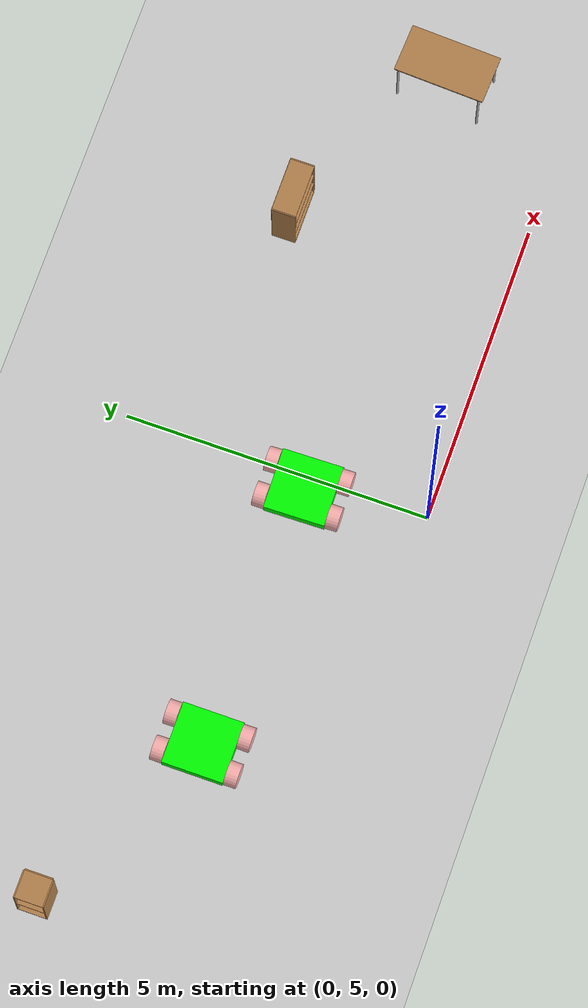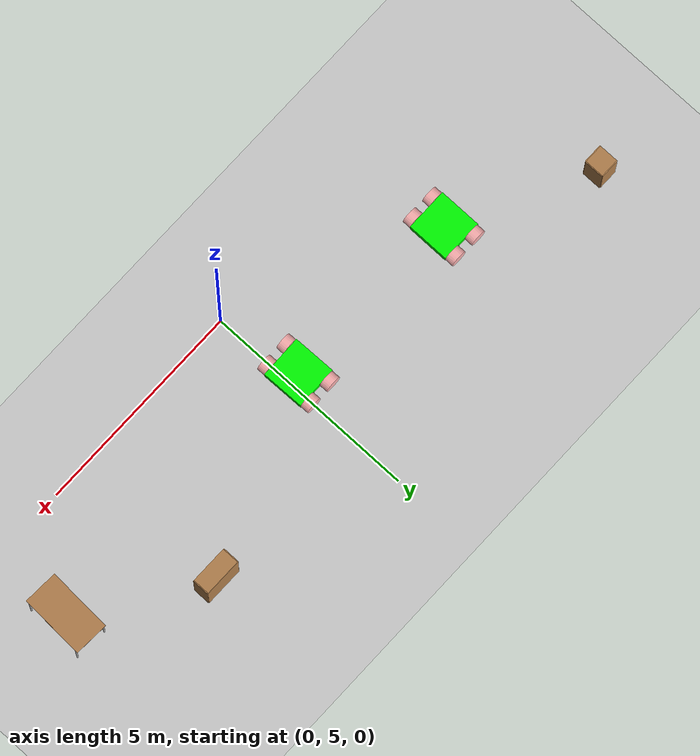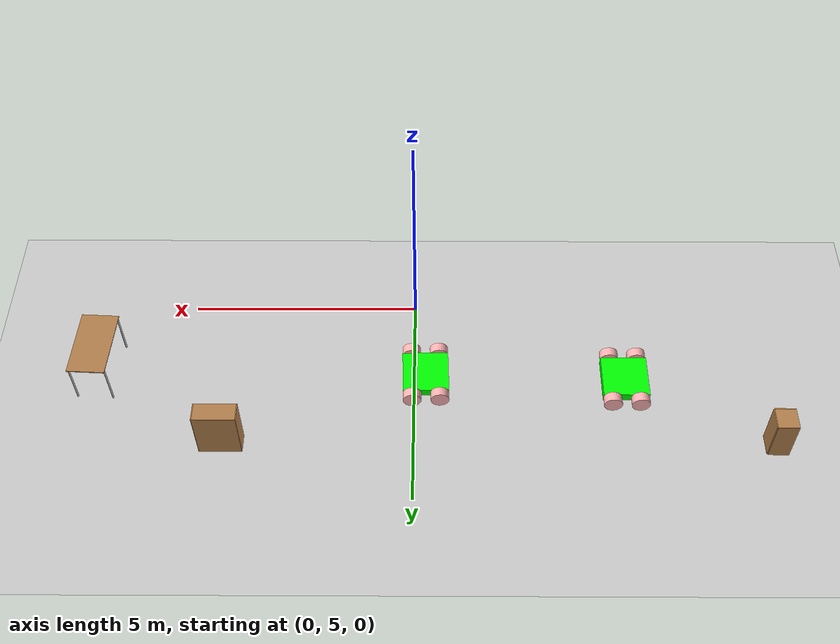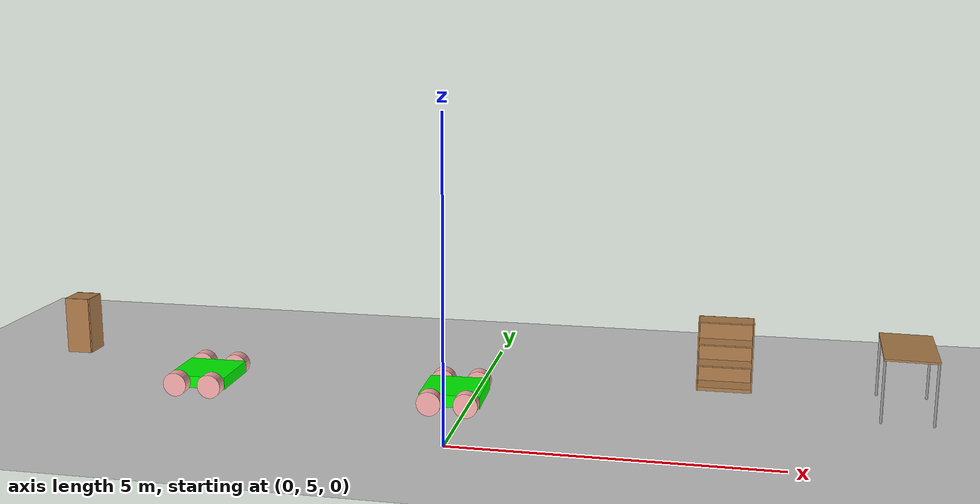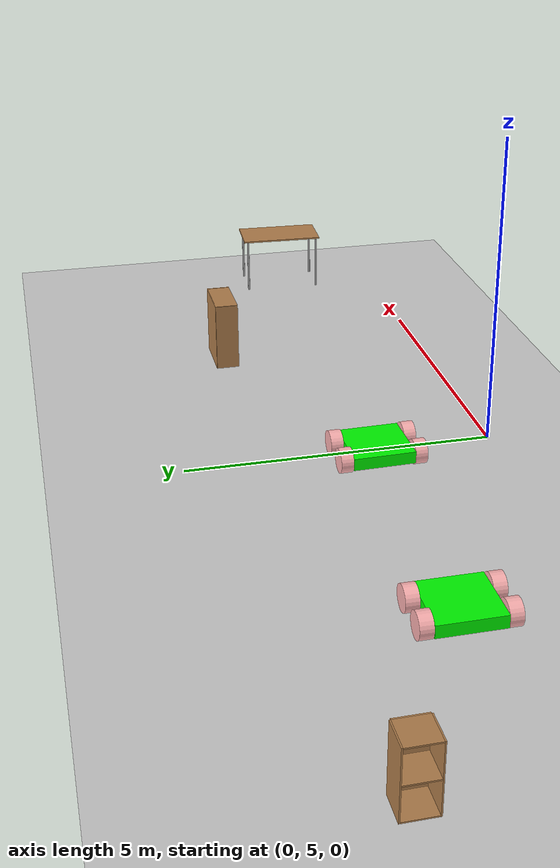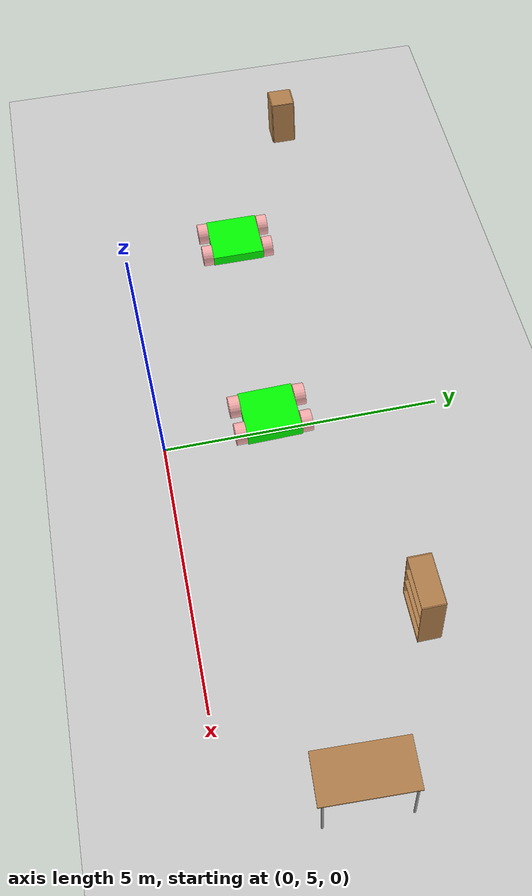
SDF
<sdf version="1.7">
 <world name="default">
  <model name="ground_plane">
   <static>1</static>
   <link name="link">
    <collision name="collision">
     <geometry><plane><normal>0 0 1</normal><size>100 100</size></plane></geometry>
     <surface><friction><ode><mu>100</mu><mu2>50</mu2></ode></friction></surface>
    </collision>
    <visual name="visual">
     <cast_shadows>0</cast_shadows>
     <geometry><plane><normal>0 0 1</normal><size>100 100</size></plane></geometry>
     <material>
      <script><uri>file://media/materials/scripts/gazebo.material</uri><name>Gazebo/Grey</name></script>
     </material>
    </visual>
   </link>
  </model>
  <model name="table_0_clone_0">
   <static>1</static>
   <link name="link">
    <collision name="surface">
     <pose>0 0 1 0 -0 0</pose>
     <geometry><box><size>1.5 0.8 0.03</size></box></geometry>
     <surface><friction><ode><mu>0.6</mu><mu2>0.6</mu2></ode></friction></surface>
    </collision>
    <visual name="visual1">
     <pose>0 0 1 0 -0 0</pose>
     <geometry><box><size>1.5 0.8 0.03</size></box></geometry>
     <material>
      <script><uri>file://media/materials/scripts/gazebo.material</uri><name>Gazebo/Wood</name></script>
     </material>
    </visual>
    <collision name="front_left_leg">
     <pose>0.68 0.38 0.5 0 -0 0</pose>
     <geometry><cylinder><radius>0.02</radius><length>1</length></cylinder></geometry>
    </collision>
    <visual name="front_left_leg">
     <pose>0.68 0.38 0.5 0 -0 0</pose>
     <geometry><cylinder><radius>0.02</radius><length>1</length></cylinder></geometry>
     <material>
      <script><uri>file://media/materials/scripts/gazebo.material</uri><name>Gazebo/Grey</name></script>
     </material>
    </visual>
    <collision name="front_right_leg">
     <pose>0.68 -0.38 0.5 0 -0 0</pose>
     <geometry><cylinder><radius>0.02</radius><length>1</length></cylinder></geometry>
    </collision>
    <visual name="front_right_leg">
     <pose>0.68 -0.38 0.5 0 -0 0</pose>
     <geometry><cylinder><radius>0.02</radius><length>1</length></cylinder></geometry>
     <material>
      <script><uri>file://media/materials/scripts/gazebo.material</uri><name>Gazebo/Grey</name></script>
     </material>
    </visual>
    <collision name="back_right_leg">
     <pose>-0.68 -0.38 0.5 0 -0 0</pose>
     <geometry><cylinder><radius>0.02</radius><length>1</length></cylinder></geometry>
    </collision>
    <visual name="back_right_leg">
     <pose>-0.68 -0.38 0.5 0 -0 0</pose>
     <geometry><cylinder><radius>0.02</radius><length>1</length></cylinder></geometry>
     <material>
      <script><uri>file://media/materials/scripts/gazebo.material</uri><name>Gazebo/Grey</name></script>
     </material>
    </visual>
    <collision name="back_left_leg">
     <pose>-0.68 0.38 0.5 0 -0 0</pose>
     <geometry><cylinder><radius>0.02</radius><length>1</length></cylinder></geometry>
    </collision>
    <visual name="back_left_leg">
     <pose>-0.68 0.38 0.5 0 -0 0</pose>
     <geometry><cylinder><radius>0.02</radius><length>1</length></cylinder></geometry>
     <material>
      <script><uri>file://media/materials/scripts/gazebo.material</uri><name>Gazebo/Grey</name></script>
     </material>
    </visual>
   </link>
   <pose>6.78526 7.02709 0.346112 0.000206 -0.004127 -1.62077</pose>
  </model>
  <model name="cabinet">
   <static>1</static>
   <link name="cabinet_bottom_plate">
    <inertial>
     <pose>0 0 -1 0 -0 0</pose>
     <inertia><ixx>2.05</ixx><ixy>0</ixy><ixz>0</ixz><iyy>2.05</iyy><iyz>0</iyz><izz>2.05</izz></inertia>
     <mass>25</mass>
    </inertial>
    <collision name="cabinet_bottom_plate_geom">
     <pose>0 0 0.01 0 -0 0</pose>
     <geometry><box><size>0.45 0.45 0.02</size></box></geometry>
    </collision>
    <visual name="cabinet_bottom_plate_geom_visual">
     <pose>0 0 0.01 0 -0 0</pose>
     <geometry><box><size>0.45 0.45 0.02</size></box></geometry>
     <material>
      <script><uri>file://media/materials/scripts/gazebo.material</uri><name>Gazebo/Wood</name></script>
     </material>
    </visual>
    <collision name="cabinet_bottom_plate_geom_cabinet_back_plate">
     <pose>0.235 0 0.51 0 -0 0</pose>
     <geometry><box><size>0.02 0.45 1.02</size></box></geometry>
    </collision>
    <visual name="cabinet_bottom_plate_geom_cabinet_back_plate_visual">
     <pose>0.235 0 0.51 0 -0 0</pose>
     <geometry><box><size>0.02 0.45 1.02</size></box></geometry>
     <material>
      <script><uri>file://media/materials/scripts/gazebo.material</uri><name>Gazebo/Wood</name></script>
     </material>
    </visual>
    <collision name="cabinet_bottom_plate_geom_cabinet_left_plate">
     <pose>0 0.235 0.51 0 -0 0</pose>
     <geometry><box><size>0.45 0.02 1.02</size></box></geometry>
    </collision>
    <visual name="cabinet_bottom_plate_geom_cabinet_left_plate_visual">
     <pose>0 0.235 0.51 0 -0 0</pose>
     <geometry><box><size>0.45 0.02 1.02</size></box></geometry>
     <material>
      <script><uri>file://media/materials/scripts/gazebo.material</uri><name>Gazebo/Wood</name></script>
     </material>
    </visual>
    <collision name="cabinet_bottom_plate_geom_cabinet_middle_plate">
     <pose>0 0 0.51 0 -0 0</pose>
     <geometry><box><size>0.45 0.45 0.02</size></box></geometry>
    </collision>
    <visual name="cabinet_bottom_plate_geom_cabinet_middle_plate_visual">
     <pose>0 0 0.51 0 -0 0</pose>
     <geometry><box><size>0.45 0.45 0.02</size></box></geometry>
     <material>
      <script><uri>file://media/materials/scripts/gazebo.material</uri><name>Gazebo/Wood</name></script>
     </material>
    </visual>
    <collision name="cabinet_bottom_plate_geom_cabinet_right_plate">
     <pose>0 -0.235 0.51 0 -0 0</pose>
     <geometry><box><size>0.45 0.02 1.02</size></box></geometry>
    </collision>
    <visual name="cabinet_bottom_plate_geom_cabinet_right_plate_visual">
     <pose>0 -0.235 0.51 0 -0 0</pose>
     <geometry><box><size>0.45 0.02 1.02</size></box></geometry>
     <material>
      <script><uri>file://media/materials/scripts/gazebo.material</uri><name>Gazebo/Wood</name></script>
     </material>
    </visual>
    <collision name="cabinet_bottom_plate_geom_cabinet_top_plate">
     <pose>0 0 1.01 0 -0 0</pose>
     <geometry><box><size>0.45 0.45 0.02</size></box></geometry>
    </collision>
    <visual name="cabinet_bottom_plate_geom_cabinet_top_plate_visual">
     <pose>0 0 1.01 0 -0 0</pose>
     <geometry><box><size>0.45 0.45 0.02</size></box></geometry>
     <material>
      <script><uri>file://media/materials/scripts/gazebo.material</uri><name>Gazebo/Wood</name></script>
     </material>
    </visual>
   </link>
   <pose>-7.68746 8.65206 0 0 -0 0</pose>
  </model>
  <model name="bookshelf">
   <static>1</static>
   <link name="link">
    <inertial><mass>1</mass></inertial>
    <collision name="back">
     <pose>0 0.005 0.6 0 -0 0</pose>
     <geometry><box><size>0.9 0.01 1.2</size></box></geometry>
    </collision>
    <visual name="visual1">
     <pose>0 0.005 0.6 0 -0 0</pose>
     <geometry><box><size>0.9 0.01 1.2</size></box></geometry>
     <material>
      <script><uri>file://media/materials/scripts/gazebo.material</uri><name>Gazebo/Wood</name></script>
     </material>
    </visual>
    <collision name="left_side">
     <pose>0.45 -0.195 0.6 0 -0 0</pose>
     <geometry><box><size>0.02 0.4 1.2</size></box></geometry>
    </collision>
    <visual name="visual2">
     <pose>0.45 -0.195 0.6 0 -0 0</pose>
     <geometry><box><size>0.02 0.4 1.2</size></box></geometry>
     <material>
      <script><uri>file://media/materials/scripts/gazebo.material</uri><name>Gazebo/Wood</name></script>
     </material>
    </visual>
    <collision name="right_side">
     <pose>-0.45 -0.195 0.6 0 -0 0</pose>
     <geometry><box><size>0.02 0.4 1.2</size></box></geometry>
    </collision>
    <visual name="visual3">
     <pose>-0.45 -0.195 0.6 0 -0 0</pose>
     <geometry><box><size>0.02 0.4 1.2</size></box></geometry>
     <material>
      <script><uri>file://media/materials/scripts/gazebo.material</uri><name>Gazebo/Wood</name></script>
     </material>
    </visual>
    <collision name="bottom">
     <pose>0 -0.195 0.03 0 -0 0</pose>
     <geometry><box><size>0.88 0.4 0.06</size></box></geometry>
    </collision>
    <visual name="visual4">
     <pose>0 -0.195 0.03 0 -0 0</pose>
     <geometry><box><size>0.88 0.4 0.06</size></box></geometry>
     <material>
      <script><uri>file://media/materials/scripts/gazebo.material</uri><name>Gazebo/Wood</name></script>
     </material>
    </visual>
    <collision name="top">
     <pose>0 -0.195 1.19 0 -0 0</pose>
     <geometry><box><size>0.88 0.4 0.02</size></box></geometry>
    </collision>
    <visual name="visual5">
     <pose>0 -0.195 1.19 0 -0 0</pose>
     <geometry><box><size>0.88 0.4 0.02</size></box></geometry>
     <material>
      <script><uri>file://media/materials/scripts/gazebo.material</uri><name>Gazebo/Wood</name></script>
     </material>
    </visual>
    <collision name="low_shelf">
     <pose>0 -0.195 0.43 0 -0 0</pose>
     <geometry><box><size>0.88 0.4 0.02</size></box></geometry>
    </collision>
    <visual name="visual6">
     <pose>0 -0.195 0.43 0 -0 0</pose>
     <geometry><box><size>0.88 0.4 0.02</size></box></geometry>
     <material>
      <script><uri>file://media/materials/scripts/gazebo.material</uri><name>Gazebo/Wood</name></script>
     </material>
    </visual>
    <collision name="high_shelf">
     <pose>0 -0.195 0.8 0 -0 0</pose>
     <geometry><box><size>0.88 0.4 0.02</size></box></geometry>
    </collision>
    <visual name="visual7">
     <pose>0 -0.195 0.8 0 -0 0</pose>
     <geometry><box><size>0.88 0.4 0.02</size></box></geometry>
     <material>
      <script><uri>file://media/materials/scripts/gazebo.material</uri><name>Gazebo/Wood</name></script>
     </material>
    </visual>
   </link>
   <pose>4.06665 8.8562 0 0 -0 0</pose>
  </model>
  <model name="AWDRobot">
   <link name="link_0">
    <inertial>
     <mass>1</mass>
     <inertia>
      <ixx>0.166667</ixx>
      <ixy>0</ixy>
      <ixz>0</ixz>
      <iyy>0.166667</iyy>
      <iyz>0</iyz>
      <izz>0.166667</izz>
     </inertia>
    </inertial>
    <visual name="visual">
     <geometry><box><size>1 1 0.2</size></box></geometry>
     <material>
      <lighting>1</lighting>
      <script><uri>file://media/materials/scripts/gazebo.material</uri><name>Gazebo/Grey</name></script>
      <shader type="pixel"><normal_map>__default__</normal_map></shader>
      <ambient>0 1 0 1</ambient>
      <diffuse>0 1 0 1</diffuse>
      <specular>0.01 0.01 0.01 1</specular>
      <emissive>0 0 0 1</emissive>
     </material>
    </visual>
    <collision name="collision">
     <geometry><box><size>1 1 0.2</size></box></geometry>
     <surface>
      <friction>
       <ode><mu>1</mu><mu2>1</mu2><fdir1>0 0 0</fdir1><slip1>0</slip1><slip2>0</slip2></ode>
       <torsional>
        <coefficient>1</coefficient>
        <patch_radius>0</patch_radius>
        <surface_radius>0</surface_radius>
        <use_patch_radius>1</use_patch_radius>
        <ode><slip>0</slip></ode>
       </torsional>
      </friction>
      <bounce><restitution_coefficient>0</restitution_coefficient><threshold>1e+06</threshold></bounce>
      <contact>
       <collide_without_contact>0</collide_without_contact>
       <collide_without_contact_bitmask>1</collide_without_contact_bitmask>
       <collide_bitmask>1</collide_bitmask>
       <ode>
        <soft_cfm>0</soft_cfm>
        <soft_erp>0.2</soft_erp>
        <kp>1e+13</kp>
        <kd>1</kd>
        <max_vel>0.01</max_vel>
        <min_depth>0</min_depth>
       </ode>
       <bullet>
        <split_impulse>1</split_impulse>
        <split_impulse_penetration_threshold>-0.01</split_impulse_penetration_threshold>
        <soft_cfm>0</soft_cfm>
        <soft_erp>0.2</soft_erp>
        <kp>1e+13</kp>
        <kd>1</kd>
       </bullet>
      </contact>
     </surface>
    </collision>
   </link>
   <link name="link_1">
    <pose>0.3 -0.600019 0 1.5707 -0 0</pose>
    <inertial>
     <mass>1</mass>
     <inertia><ixx>0.145833</ixx><ixy>0</ixy><ixz>0</ixz><iyy>0.145833</iyy><iyz>0</iyz><izz>0.125</izz></inertia>
    </inertial>
    <visual name="visual">
     <geometry><cylinder><radius>0.2</radius><length>0.2</length></cylinder></geometry>
     <material>
      <lighting>1</lighting>
      <script><uri>file://media/materials/scripts/gazebo.material</uri><name>Gazebo/Grey</name></script>
      <shader type="pixel"><normal_map>__default__</normal_map></shader>
      <ambient>1 0.3 0.3 1</ambient>
      <diffuse>1 0.7 0.7 1</diffuse>
      <specular>0.01 0.01 0.01 1</specular>
      <emissive>0 0 0 1</emissive>
     </material>
    </visual>
    <collision name="collision">
     <geometry><cylinder><radius>0.2</radius><length>0.2</length></cylinder></geometry>
     <surface>
      <friction>
       <ode><mu>1</mu><mu2>1</mu2><fdir1>0 0 0</fdir1><slip1>0</slip1><slip2>0</slip2></ode>
       <torsional>
        <coefficient>1</coefficient>
        <patch_radius>0</patch_radius>
        <surface_radius>0</surface_radius>
        <use_patch_radius>1</use_patch_radius>
        <ode><slip>0</slip></ode>
       </torsional>
      </friction>
      <bounce><restitution_coefficient>0</restitution_coefficient><threshold>1e+06</threshold></bounce>
      <contact>
       <collide_without_contact>0</collide_without_contact>
       <collide_without_contact_bitmask>1</collide_without_contact_bitmask>
       <collide_bitmask>1</collide_bitmask>
       <ode>
        <soft_cfm>0</soft_cfm>
        <soft_erp>0.2</soft_erp>
        <kp>1e+13</kp>
        <kd>1</kd>
        <max_vel>0.01</max_vel>
        <min_depth>0</min_depth>
       </ode>
       <bullet>
        <split_impulse>1</split_impulse>
        <split_impulse_penetration_threshold>-0.01</split_impulse_penetration_threshold>
        <soft_cfm>0</soft_cfm>
        <soft_erp>0.2</soft_erp>
        <kp>1e+13</kp>
        <kd>1</kd>
       </bullet>
      </contact>
     </surface>
    </collision>
   </link>
   <link name="link_1_clone">
    <pose>-0.3 -0.600019 0 1.5707 -0 0</pose>
    <inertial>
     <mass>1</mass>
     <inertia><ixx>0.145833</ixx><ixy>0</ixy><ixz>0</ixz><iyy>0.145833</iyy><iyz>0</iyz><izz>0.125</izz></inertia>
    </inertial>
    <visual name="visual">
     <geometry><cylinder><radius>0.2</radius><length>0.2</length></cylinder></geometry>
     <material>
      <lighting>1</lighting>
      <script><uri>file://media/materials/scripts/gazebo.material</uri><name>Gazebo/Grey</name></script>
      <shader type="pixel"><normal_map>__default__</normal_map></shader>
      <ambient>1 0.3 0.3 1</ambient>
      <diffuse>1 0.7 0.7 1</diffuse>
      <specular>0.01 0.01 0.01 1</specular>
      <emissive>0 0 0 1</emissive>
     </material>
    </visual>
    <collision name="collision">
     <geometry><cylinder><radius>0.2</radius><length>0.2</length></cylinder></geometry>
     <surface>
      <friction>
       <ode><mu>1</mu><mu2>1</mu2><fdir1>0 0 0</fdir1><slip1>0</slip1><slip2>0</slip2></ode>
       <torsional>
        <coefficient>1</coefficient>
        <patch_radius>0</patch_radius>
        <surface_radius>0</surface_radius>
        <use_patch_radius>1</use_patch_radius>
        <ode><slip>0</slip></ode>
       </torsional>
      </friction>
      <bounce><restitution_coefficient>0</restitution_coefficient><threshold>1e+06</threshold></bounce>
      <contact>
       <collide_without_contact>0</collide_without_contact>
       <collide_without_contact_bitmask>1</collide_without_contact_bitmask>
       <collide_bitmask>1</collide_bitmask>
       <ode>
        <soft_cfm>0</soft_cfm>
        <soft_erp>0.2</soft_erp>
        <kp>1e+13</kp>
        <kd>1</kd>
        <max_vel>0.01</max_vel>
        <min_depth>0</min_depth>
       </ode>
       <bullet>
        <split_impulse>1</split_impulse>
        <split_impulse_penetration_threshold>-0.01</split_impulse_penetration_threshold>
        <soft_cfm>0</soft_cfm>
        <soft_erp>0.2</soft_erp>
        <kp>1e+13</kp>
        <kd>1</kd>
       </bullet>
      </contact>
     </surface>
    </collision>
   </link>
   <link name="link_1_clone_0">
    <pose>-0.3 0.600019 0 1.5707 -0 0</pose>
    <inertial>
     <mass>1</mass>
     <inertia><ixx>0.145833</ixx><ixy>0</ixy><ixz>0</ixz><iyy>0.145833</iyy><iyz>0</iyz><izz>0.125</izz></inertia>
    </inertial>
    <visual name="visual">
     <geometry><cylinder><radius>0.2</radius><length>0.2</length></cylinder></geometry>
     <material>
      <lighting>1</lighting>
      <script><uri>file://media/materials/scripts/gazebo.material</uri><name>Gazebo/Grey</name></script>
      <shader type="pixel"><normal_map>__default__</normal_map></shader>
      <ambient>1 0.3 0.3 1</ambient>
      <diffuse>1 0.7 0.7 1</diffuse>
      <specular>0.01 0.01 0.01 1</specular>
      <emissive>0 0 0 1</emissive>
     </material>
    </visual>
    <collision name="collision">
     <geometry><cylinder><radius>0.2</radius><length>0.2</length></cylinder></geometry>
     <surface>
      <friction>
       <ode><mu>1</mu><mu2>1</mu2><fdir1>0 0 0</fdir1><slip1>0</slip1><slip2>0</slip2></ode>
       <torsional>
        <coefficient>1</coefficient>
        <patch_radius>0</patch_radius>
        <surface_radius>0</surface_radius>
        <use_patch_radius>1</use_patch_radius>
        <ode><slip>0</slip></ode>
       </torsional>
      </friction>
      <bounce><restitution_coefficient>0</restitution_coefficient><threshold>1e+06</threshold></bounce>
      <contact>
       <collide_without_contact>0</collide_without_contact>
       <collide_without_contact_bitmask>1</collide_without_contact_bitmask>
       <collide_bitmask>1</collide_bitmask>
       <ode>
        <soft_cfm>0</soft_cfm>
        <soft_erp>0.2</soft_erp>
        <kp>1e+13</kp>
        <kd>1</kd>
        <max_vel>0.01</max_vel>
        <min_depth>0</min_depth>
       </ode>
       <bullet>
        <split_impulse>1</split_impulse>
        <split_impulse_penetration_threshold>-0.01</split_impulse_penetration_threshold>
        <soft_cfm>0</soft_cfm>
        <soft_erp>0.2</soft_erp>
        <kp>1e+13</kp>
        <kd>1</kd>
       </bullet>
      </contact>
     </surface>
    </collision>
   </link>
   <link name="link_1_clone_1">
    <pose>0.3 0.600019 0 1.5707 -0 0</pose>
    <inertial>
     <mass>1</mass>
     <inertia><ixx>0.145833</ixx><ixy>0</ixy><ixz>0</ixz><iyy>0.145833</iyy><iyz>0</iyz><izz>0.125</izz></inertia>
    </inertial>
    <visual name="visual">
     <geometry><cylinder><radius>0.2</radius><length>0.2</length></cylinder></geometry>
     <material>
      <lighting>1</lighting>
      <script><uri>file://media/materials/scripts/gazebo.material</uri><name>Gazebo/Grey</name></script>
      <shader type="pixel"><normal_map>__default__</normal_map></shader>
      <ambient>1 0.3 0.3 1</ambient>
      <diffuse>1 0.7 0.7 1</diffuse>
      <specular>0.01 0.01 0.01 1</specular>
      <emissive>0 0 0 1</emissive>
     </material>
    </visual>
    <collision name="collision">
     <geometry><cylinder><radius>0.2</radius><length>0.2</length></cylinder></geometry>
     <surface>
      <friction>
       <ode><mu>1</mu><mu2>1</mu2><fdir1>0 0 0</fdir1><slip1>0</slip1><slip2>0</slip2></ode>
       <torsional>
        <coefficient>1</coefficient>
        <patch_radius>0</patch_radius>
        <surface_radius>0</surface_radius>
        <use_patch_radius>1</use_patch_radius>
        <ode><slip>0</slip></ode>
       </torsional>
      </friction>
      <bounce><restitution_coefficient>0</restitution_coefficient><threshold>1e+06</threshold></bounce>
      <contact>
       <collide_without_contact>0</collide_without_contact>
       <collide_without_contact_bitmask>1</collide_without_contact_bitmask>
       <collide_bitmask>1</collide_bitmask>
       <ode>
        <soft_cfm>0</soft_cfm>
        <soft_erp>0.2</soft_erp>
        <kp>1e+13</kp>
        <kd>1</kd>
        <max_vel>0.01</max_vel>
        <min_depth>0</min_depth>
       </ode>
       <bullet>
        <split_impulse>1</split_impulse>
        <split_impulse_penetration_threshold>-0.01</split_impulse_penetration_threshold>
        <soft_cfm>0</soft_cfm>
        <soft_erp>0.2</soft_erp>
        <kp>1e+13</kp>
        <kd>1</kd>
       </bullet>
      </contact>
     </surface>
    </collision>
   </link>
   <joint name="link_0_JOINT_1" type="revolute">
    <parent>link_0</parent>
    <child>link_1_clone</child>
    <axis>
     <xyz>0 0 1</xyz>
     <limit>
      <lower>-1.79769e+308</lower>
      <upper>1.79769e+308</upper>
      <effort>-1</effort>
      <velocity>-1</velocity>
     </limit>
     <dynamics>
      <spring_reference>0</spring_reference>
      <spring_stiffness>0</spring_stiffness>
      <damping>0</damping>
     </dynamics>
    </axis>
    <physics>
     <ode><limit><cfm>0</cfm><erp>0.2</erp></limit><suspension><cfm>0</cfm><erp>0.2</erp></suspension></ode>
    </physics>
   </joint>
   <joint name="link_0_JOINT_2" type="revolute">
    <parent>link_0</parent>
    <child>link_1</child>
    <axis>
     <xyz>0 0 1</xyz>
     <limit>
      <lower>-1.79769e+308</lower>
      <upper>1.79769e+308</upper>
      <effort>-1</effort>
      <velocity>-1</velocity>
     </limit>
     <dynamics>
      <spring_reference>0</spring_reference>
      <spring_stiffness>0</spring_stiffness>
      <damping>0</damping>
     </dynamics>
    </axis>
    <physics>
     <ode><limit><cfm>0</cfm><erp>0.2</erp></limit><suspension><cfm>0</cfm><erp>0.2</erp></suspension></ode>
    </physics>
   </joint>
   <joint name="link_0_JOINT_3" type="revolute">
    <parent>link_0</parent>
    <child>link_1_clone_0</child>
    <axis>
     <xyz>0 0 1</xyz>
     <limit>
      <lower>-1.79769e+308</lower>
      <upper>1.79769e+308</upper>
      <effort>-1</effort>
      <velocity>-1</velocity>
     </limit>
     <dynamics>
      <spring_reference>0</spring_reference>
      <spring_stiffness>0</spring_stiffness>
      <damping>0</damping>
     </dynamics>
    </axis>
    <physics>
     <ode><limit><cfm>0</cfm><erp>0.2</erp></limit><suspension><cfm>0</cfm><erp>0.2</erp></suspension></ode>
    </physics>
   </joint>
   <joint name="link_0_JOINT_4" type="revolute">
    <parent>link_0</parent>
    <child>link_1_clone_1</child>
    <axis>
     <xyz>0 0 1</xyz>
     <limit>
      <lower>-1.79769e+308</lower>
      <upper>1.79769e+308</upper>
      <effort>-1</effort>
      <velocity>-1</velocity>
     </limit>
     <dynamics>
      <spring_reference>0</spring_reference>
      <spring_stiffness>0</spring_stiffness>
      <damping>0</damping>
     </dynamics>
    </axis>
    <physics>
     <ode><limit><cfm>0</cfm><erp>0.2</erp></limit><suspension><cfm>0</cfm><erp>0.2</erp></suspension></ode>
    </physics>
   </joint>
   <static>0</static>
   <pose>-0.249181 6.96899 0.200008 -3e-06 -0 0.021169</pose>
  </model>
  <model name="AWDRobot_clone">
   <link name="link_0">
    <inertial>
     <mass>1</mass>
     <inertia>
      <ixx>0.166667</ixx>
      <ixy>0</ixy>
      <ixz>0</ixz>
      <iyy>0.166667</iyy>
      <iyz>0</iyz>
      <izz>0.166667</izz>
     </inertia>
    </inertial>
    <visual name="visual">
     <geometry><box><size>1 1 0.2</size></box></geometry>
     <material>
      <lighting>1</lighting>
      <script><uri>file://media/materials/scripts/gazebo.material</uri><name>Gazebo/Grey</name></script>
      <shader type="pixel"><normal_map>__default__</normal_map></shader>
      <ambient>0 1 0 1</ambient>
      <diffuse>0 1 0 1</diffuse>
      <specular>0.01 0.01 0.01 1</specular>
      <emissive>0 0 0 1</emissive>
     </material>
    </visual>
    <collision name="collision">
     <geometry><box><size>1 1 0.2</size></box></geometry>
     <surface>
      <friction>
       <ode><mu>1</mu><mu2>1</mu2><fdir1>0 0 0</fdir1><slip1>0</slip1><slip2>0</slip2></ode>
       <torsional>
        <coefficient>1</coefficient>
        <patch_radius>0</patch_radius>
        <surface_radius>0</surface_radius>
        <use_patch_radius>1</use_patch_radius>
        <ode><slip>0</slip></ode>
       </torsional>
      </friction>
      <bounce><restitution_coefficient>0</restitution_coefficient><threshold>1e+06</threshold></bounce>
      <contact>
       <collide_without_contact>0</collide_without_contact>
       <collide_without_contact_bitmask>1</collide_without_contact_bitmask>
       <collide_bitmask>1</collide_bitmask>
       <ode>
        <soft_cfm>0</soft_cfm>
        <soft_erp>0.2</soft_erp>
        <kp>1e+13</kp>
        <kd>1</kd>
        <max_vel>0.01</max_vel>
        <min_depth>0</min_depth>
       </ode>
       <bullet>
        <split_impulse>1</split_impulse>
        <split_impulse_penetration_threshold>-0.01</split_impulse_penetration_threshold>
        <soft_cfm>0</soft_cfm>
        <soft_erp>0.2</soft_erp>
        <kp>1e+13</kp>
        <kd>1</kd>
       </bullet>
      </contact>
     </surface>
    </collision>
   </link>
   <link name="link_1">
    <pose>0.3 -0.600019 0 1.5707 -0 0</pose>
    <inertial>
     <mass>1</mass>
     <inertia><ixx>0.145833</ixx><ixy>0</ixy><ixz>0</ixz><iyy>0.145833</iyy><iyz>0</iyz><izz>0.125</izz></inertia>
    </inertial>
    <visual name="visual">
     <geometry><cylinder><radius>0.2</radius><length>0.2</length></cylinder></geometry>
     <material>
      <lighting>1</lighting>
      <script><uri>file://media/materials/scripts/gazebo.material</uri><name>Gazebo/Grey</name></script>
      <shader type="pixel"><normal_map>__default__</normal_map></shader>
      <ambient>1 0.3 0.3 1</ambient>
      <diffuse>1 0.7 0.7 1</diffuse>
      <specular>0.01 0.01 0.01 1</specular>
      <emissive>0 0 0 1</emissive>
     </material>
    </visual>
    <collision name="collision">
     <geometry><cylinder><radius>0.2</radius><length>0.2</length></cylinder></geometry>
     <surface>
      <friction>
       <ode><mu>1</mu><mu2>1</mu2><fdir1>0 0 0</fdir1><slip1>0</slip1><slip2>0</slip2></ode>
       <torsional>
        <coefficient>1</coefficient>
        <patch_radius>0</patch_radius>
        <surface_radius>0</surface_radius>
        <use_patch_radius>1</use_patch_radius>
        <ode><slip>0</slip></ode>
       </torsional>
      </friction>
      <bounce><restitution_coefficient>0</restitution_coefficient><threshold>1e+06</threshold></bounce>
      <contact>
       <collide_without_contact>0</collide_without_contact>
       <collide_without_contact_bitmask>1</collide_without_contact_bitmask>
       <collide_bitmask>1</collide_bitmask>
       <ode>
        <soft_cfm>0</soft_cfm>
        <soft_erp>0.2</soft_erp>
        <kp>1e+13</kp>
        <kd>1</kd>
        <max_vel>0.01</max_vel>
        <min_depth>0</min_depth>
       </ode>
       <bullet>
        <split_impulse>1</split_impulse>
        <split_impulse_penetration_threshold>-0.01</split_impulse_penetration_threshold>
        <soft_cfm>0</soft_cfm>
        <soft_erp>0.2</soft_erp>
        <kp>1e+13</kp>
        <kd>1</kd>
       </bullet>
      </contact>
     </surface>
    </collision>
   </link>
   <link name="link_1_clone">
    <pose>-0.3 -0.600019 0 1.5707 -0 0</pose>
    <inertial>
     <mass>1</mass>
     <inertia><ixx>0.145833</ixx><ixy>0</ixy><ixz>0</ixz><iyy>0.145833</iyy><iyz>0</iyz><izz>0.125</izz></inertia>
    </inertial>
    <visual name="visual">
     <geometry><cylinder><radius>0.2</radius><length>0.2</length></cylinder></geometry>
     <material>
      <lighting>1</lighting>
      <script><uri>file://media/materials/scripts/gazebo.material</uri><name>Gazebo/Grey</name></script>
      <shader type="pixel"><normal_map>__default__</normal_map></shader>
      <ambient>1 0.3 0.3 1</ambient>
      <diffuse>1 0.7 0.7 1</diffuse>
      <specular>0.01 0.01 0.01 1</specular>
      <emissive>0 0 0 1</emissive>
     </material>
    </visual>
    <collision name="collision">
     <geometry><cylinder><radius>0.2</radius><length>0.2</length></cylinder></geometry>
     <surface>
      <friction>
       <ode><mu>1</mu><mu2>1</mu2><fdir1>0 0 0</fdir1><slip1>0</slip1><slip2>0</slip2></ode>
       <torsional>
        <coefficient>1</coefficient>
        <patch_radius>0</patch_radius>
        <surface_radius>0</surface_radius>
        <use_patch_radius>1</use_patch_radius>
        <ode><slip>0</slip></ode>
       </torsional>
      </friction>
      <bounce><restitution_coefficient>0</restitution_coefficient><threshold>1e+06</threshold></bounce>
      <contact>
       <collide_without_contact>0</collide_without_contact>
       <collide_without_contact_bitmask>1</collide_without_contact_bitmask>
       <collide_bitmask>1</collide_bitmask>
       <ode>
        <soft_cfm>0</soft_cfm>
        <soft_erp>0.2</soft_erp>
        <kp>1e+13</kp>
        <kd>1</kd>
        <max_vel>0.01</max_vel>
        <min_depth>0</min_depth>
       </ode>
       <bullet>
        <split_impulse>1</split_impulse>
        <split_impulse_penetration_threshold>-0.01</split_impulse_penetration_threshold>
        <soft_cfm>0</soft_cfm>
        <soft_erp>0.2</soft_erp>
        <kp>1e+13</kp>
        <kd>1</kd>
       </bullet>
      </contact>
     </surface>
    </collision>
   </link>
   <link name="link_1_clone_0">
    <pose>-0.3 0.600019 0 1.5707 -0 0</pose>
    <inertial>
     <mass>1</mass>
     <inertia><ixx>0.145833</ixx><ixy>0</ixy><ixz>0</ixz><iyy>0.145833</iyy><iyz>0</iyz><izz>0.125</izz></inertia>
    </inertial>
    <visual name="visual">
     <geometry><cylinder><radius>0.2</radius><length>0.2</length></cylinder></geometry>
     <material>
      <lighting>1</lighting>
      <script><uri>file://media/materials/scripts/gazebo.material</uri><name>Gazebo/Grey</name></script>
      <shader type="pixel"><normal_map>__default__</normal_map></shader>
      <ambient>1 0.3 0.3 1</ambient>
      <diffuse>1 0.7 0.7 1</diffuse>
      <specular>0.01 0.01 0.01 1</specular>
      <emissive>0 0 0 1</emissive>
     </material>
    </visual>
    <collision name="collision">
     <geometry><cylinder><radius>0.2</radius><length>0.2</length></cylinder></geometry>
     <surface>
      <friction>
       <ode><mu>1</mu><mu2>1</mu2><fdir1>0 0 0</fdir1><slip1>0</slip1><slip2>0</slip2></ode>
       <torsional>
        <coefficient>1</coefficient>
        <patch_radius>0</patch_radius>
        <surface_radius>0</surface_radius>
        <use_patch_radius>1</use_patch_radius>
        <ode><slip>0</slip></ode>
       </torsional>
      </friction>
      <bounce><restitution_coefficient>0</restitution_coefficient><threshold>1e+06</threshold></bounce>
      <contact>
       <collide_without_contact>0</collide_without_contact>
       <collide_without_contact_bitmask>1</collide_without_contact_bitmask>
       <collide_bitmask>1</collide_bitmask>
       <ode>
        <soft_cfm>0</soft_cfm>
        <soft_erp>0.2</soft_erp>
        <kp>1e+13</kp>
        <kd>1</kd>
        <max_vel>0.01</max_vel>
        <min_depth>0</min_depth>
       </ode>
       <bullet>
        <split_impulse>1</split_impulse>
        <split_impulse_penetration_threshold>-0.01</split_impulse_penetration_threshold>
        <soft_cfm>0</soft_cfm>
        <soft_erp>0.2</soft_erp>
        <kp>1e+13</kp>
        <kd>1</kd>
       </bullet>
      </contact>
     </surface>
    </collision>
   </link>
   <link name="link_1_clone_1">
    <pose>0.3 0.600019 0 1.5707 -0 0</pose>
    <inertial>
     <mass>1</mass>
     <inertia><ixx>0.145833</ixx><ixy>0</ixy><ixz>0</ixz><iyy>0.145833</iyy><iyz>0</iyz><izz>0.125</izz></inertia>
    </inertial>
    <visual name="visual">
     <geometry><cylinder><radius>0.2</radius><length>0.2</length></cylinder></geometry>
     <material>
      <lighting>1</lighting>
      <script><uri>file://media/materials/scripts/gazebo.material</uri><name>Gazebo/Grey</name></script>
      <shader type="pixel"><normal_map>__default__</normal_map></shader>
      <ambient>1 0.3 0.3 1</ambient>
      <diffuse>1 0.7 0.7 1</diffuse>
      <specular>0.01 0.01 0.01 1</specular>
      <emissive>0 0 0 1</emissive>
     </material>
    </visual>
    <collision name="collision">
     <geometry><cylinder><radius>0.2</radius><length>0.2</length></cylinder></geometry>
     <surface>
      <friction>
       <ode><mu>1</mu><mu2>1</mu2><fdir1>0 0 0</fdir1><slip1>0</slip1><slip2>0</slip2></ode>
       <torsional>
        <coefficient>1</coefficient>
        <patch_radius>0</patch_radius>
        <surface_radius>0</surface_radius>
        <use_patch_radius>1</use_patch_radius>
        <ode><slip>0</slip></ode>
       </torsional>
      </friction>
      <bounce><restitution_coefficient>0</restitution_coefficient><threshold>1e+06</threshold></bounce>
      <contact>
       <collide_without_contact>0</collide_without_contact>
       <collide_without_contact_bitmask>1</collide_without_contact_bitmask>
       <collide_bitmask>1</collide_bitmask>
       <ode>
        <soft_cfm>0</soft_cfm>
        <soft_erp>0.2</soft_erp>
        <kp>1e+13</kp>
        <kd>1</kd>
        <max_vel>0.01</max_vel>
        <min_depth>0</min_depth>
       </ode>
       <bullet>
        <split_impulse>1</split_impulse>
        <split_impulse_penetration_threshold>-0.01</split_impulse_penetration_threshold>
        <soft_cfm>0</soft_cfm>
        <soft_erp>0.2</soft_erp>
        <kp>1e+13</kp>
        <kd>1</kd>
       </bullet>
      </contact>
     </surface>
    </collision>
   </link>
   <joint name="link_0_JOINT_1" type="revolute">
    <parent>link_0</parent>
    <child>link_1_clone</child>
    <axis>
     <xyz>0 0 1</xyz>
     <limit>
      <lower>-1.79769e+308</lower>
      <upper>1.79769e+308</upper>
      <effort>-1</effort>
      <velocity>-1</velocity>
     </limit>
     <dynamics>
      <spring_reference>0</spring_reference>
      <spring_stiffness>0</spring_stiffness>
      <damping>0</damping>
     </dynamics>
    </axis>
    <physics>
     <ode><limit><cfm>0</cfm><erp>0.2</erp></limit><suspension><cfm>0</cfm><erp>0.2</erp></suspension></ode>
    </physics>
   </joint>
   <joint name="link_0_JOINT_2" type="revolute">
    <parent>link_0</parent>
    <child>link_1</child>
    <axis>
     <xyz>0 0 1</xyz>
     <limit>
      <lower>-1.79769e+308</lower>
      <upper>1.79769e+308</upper>
      <effort>-1</effort>
      <velocity>-1</velocity>
     </limit>
     <dynamics>
      <spring_reference>0</spring_reference>
      <spring_stiffness>0</spring_stiffness>
      <damping>0</damping>
     </dynamics>
    </axis>
    <physics>
     <ode><limit><cfm>0</cfm><erp>0.2</erp></limit><suspension><cfm>0</cfm><erp>0.2</erp></suspension></ode>
    </physics>
   </joint>
   <joint name="link_0_JOINT_3" type="revolute">
    <parent>link_0</parent>
    <child>link_1_clone_0</child>
    <axis>
     <xyz>0 0 1</xyz>
     <limit>
      <lower>-1.79769e+308</lower>
      <upper>1.79769e+308</upper>
      <effort>-1</effort>
      <velocity>-1</velocity>
     </limit>
     <dynamics>
      <spring_reference>0</spring_reference>
      <spring_stiffness>0</spring_stiffness>
      <damping>0</damping>
     </dynamics>
    </axis>
    <physics>
     <ode><limit><cfm>0</cfm><erp>0.2</erp></limit><suspension><cfm>0</cfm><erp>0.2</erp></suspension></ode>
    </physics>
   </joint>
   <joint name="link_0_JOINT_4" type="revolute">
    <parent>link_0</parent>
    <child>link_1_clone_1</child>
    <axis>
     <xyz>0 0 1</xyz>
     <limit>
      <lower>-1.79769e+308</lower>
      <upper>1.79769e+308</upper>
      <effort>-1</effort>
      <velocity>-1</velocity>
     </limit>
     <dynamics>
      <spring_reference>0</spring_reference>
      <spring_stiffness>0</spring_stiffness>
      <damping>0</damping>
     </dynamics>
    </axis>
    <physics>
     <ode><limit><cfm>0</cfm><erp>0.2</erp></limit><suspension><cfm>0</cfm><erp>0.2</erp></suspension></ode>
    </physics>
   </joint>
   <static>0</static>
   <pose>-4.59596 7.0777 0.200005 0 -1.5e-05 -0.000731</pose>
  </model>
 </world>
</sdf>
